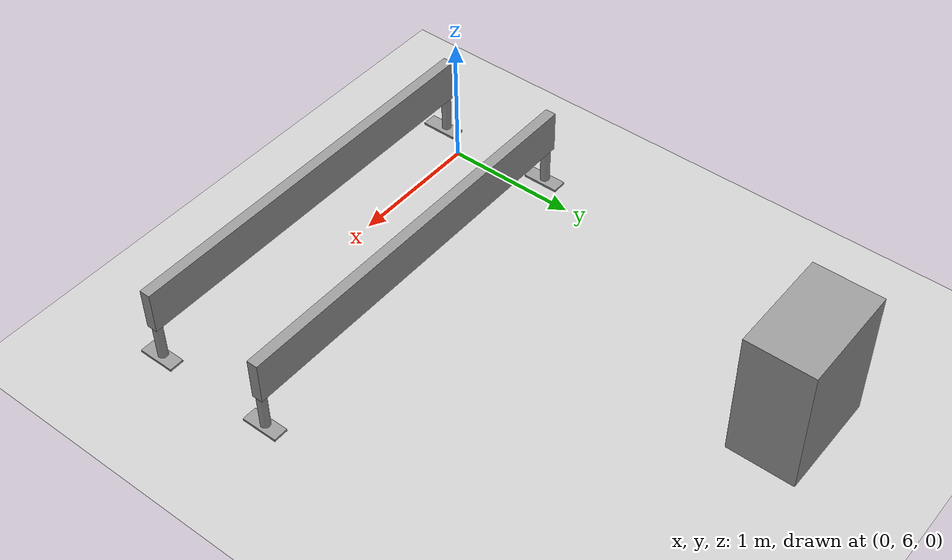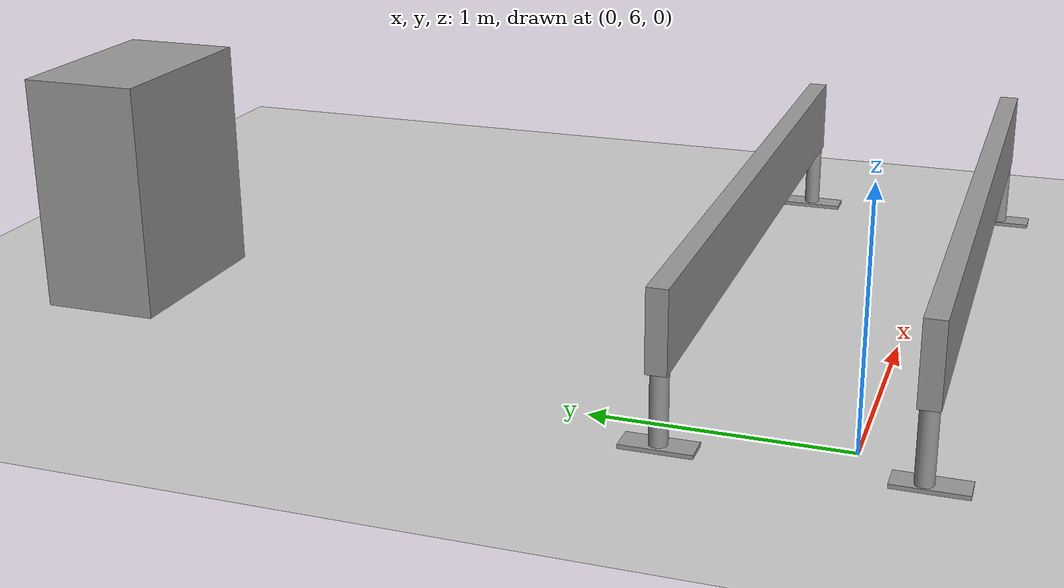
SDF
<sdf version="1.6">
 <world name="default">
  <model name="ground_plane">
   <static>1</static>
   <link name="link">
    <collision name="collision">
     <geometry><plane><normal>0 0 1</normal><size>100 100</size></plane></geometry>
     <surface><friction><ode><mu>100</mu><mu2>50</mu2></ode></friction></surface>
    </collision>
    <visual name="visual">
     <cast_shadows>0</cast_shadows>
     <geometry><plane><normal>0 0 1</normal><size>100 100</size></plane></geometry>
     <material>
      <script><uri>file://media/materials/scripts/gazebo.material</uri><name>Gazebo/Grey</name></script>
     </material>
    </visual>
   </link>
  </model>
  <model name="banchi">
   <link name="link_3">
    <pose>0.19401 0.058881 0.005926 0 -0 0</pose>
    <inertial>
     <mass>1</mass>
     <inertia>
      <ixx>0.166667</ixx>
      <ixy>0</ixy>
      <ixz>0</ixz>
      <iyy>0.166667</iyy>
      <iyz>0</iyz>
      <izz>0.166667</izz>
     </inertia>
    </inertial>
    <visual name="visual">
     <geometry><box><size>0.8 0.5 1</size></box></geometry>
     <material>
      <lighting>1</lighting>
      <script><uri>file://media/materials/scripts/gazebo.material</uri><name>Gazebo/Grey</name></script>
      <ambient>0.3 0.3 0.3 1</ambient>
      <diffuse>0.7 0.7 0.7 1</diffuse>
      <specular>0.01 0.01 0.01 1</specular>
      <emissive>0 0 0 1</emissive>
      <shader type="vertex"><normal_map>__default__</normal_map></shader>
     </material>
    </visual>
    <collision name="collision">
     <geometry><box><size>0.8 0.5 1</size></box></geometry>
     <surface>
      <friction>
       <ode><mu>1</mu><mu2>1</mu2><fdir1>0 0 0</fdir1><slip1>0</slip1><slip2>0</slip2></ode>
       <torsional>
        <coefficient>1</coefficient>
        <patch_radius>0</patch_radius>
        <surface_radius>0</surface_radius>
        <use_patch_radius>1</use_patch_radius>
        <ode><slip>0</slip></ode>
       </torsional>
      </friction>
      <bounce><restitution_coefficient>0</restitution_coefficient><threshold>1e+06</threshold></bounce>
      <contact>
       <collide_without_contact>0</collide_without_contact>
       <collide_without_contact_bitmask>1</collide_without_contact_bitmask>
       <collide_bitmask>1</collide_bitmask>
       <ode>
        <soft_cfm>0</soft_cfm>
        <soft_erp>0.2</soft_erp>
        <kp>1e+13</kp>
        <kd>1</kd>
        <max_vel>0.01</max_vel>
        <min_depth>0</min_depth>
       </ode>
       <bullet>
        <split_impulse>1</split_impulse>
        <split_impulse_penetration_threshold>-0.01</split_impulse_penetration_threshold>
        <soft_cfm>0</soft_cfm>
        <soft_erp>0.2</soft_erp>
        <kp>1e+13</kp>
        <kd>1</kd>
       </bullet>
      </contact>
     </surface>
    </collision>
   </link>
   <link name="link_0">
    <inertial>
     <mass>0.000785881</mass>
     <inertia>
      <ixx>5.11476e-06</ixx>
      <ixy>0</ixy>
      <ixz>0</ixz>
      <iyy>8.37345e-07</iyy>
      <iyz>0</iyz>
      <izz>5.8658e-06</izz>
     </inertia>
    </inertial>
    <pose>2.2428 -2.55708 -0.495327 0 -0 0</pose>
    <visual name="visual">
     <geometry><box><size>0.110122 0.278282 0.025669</size></box></geometry>
     <material>
      <lighting>1</lighting>
      <script><uri>file://media/materials/scripts/gazebo.material</uri><name>Gazebo/Grey</name></script>
     </material>
    </visual>
    <collision name="collision">
     <geometry><box><size>0.110122 0.278282 0.025669</size></box></geometry>
     <surface>
      <friction>
       <ode><mu>1</mu><mu2>1</mu2><fdir1>0 0 0</fdir1><slip1>0</slip1><slip2>0</slip2></ode>
       <torsional>
        <coefficient>1</coefficient>
        <patch_radius>0</patch_radius>
        <surface_radius>0</surface_radius>
        <use_patch_radius>1</use_patch_radius>
        <ode><slip>0</slip></ode>
       </torsional>
      </friction>
      <bounce><restitution_coefficient>0</restitution_coefficient><threshold>1e+06</threshold></bounce>
      <contact>
       <collide_without_contact>0</collide_without_contact>
       <collide_without_contact_bitmask>1</collide_without_contact_bitmask>
       <collide_bitmask>1</collide_bitmask>
       <ode>
        <soft_cfm>0</soft_cfm>
        <soft_erp>0.2</soft_erp>
        <kp>1e+13</kp>
        <kd>1</kd>
        <max_vel>0.01</max_vel>
        <min_depth>0</min_depth>
       </ode>
       <bullet>
        <split_impulse>1</split_impulse>
        <split_impulse_penetration_threshold>-0.01</split_impulse_penetration_threshold>
        <soft_cfm>0</soft_cfm>
        <soft_erp>0.2</soft_erp>
        <kp>1e+13</kp>
        <kd>1</kd>
       </bullet>
      </contact>
     </surface>
    </collision>
   </link>
   <link name="link_0_clone">
    <inertial>
     <mass>0.000785881</mass>
     <inertia>
      <ixx>5.11476e-06</ixx>
      <ixy>0</ixy>
      <ixz>0</ixz>
      <iyy>8.37345e-07</iyy>
      <iyz>0</iyz>
      <izz>5.8658e-06</izz>
     </inertia>
    </inertial>
    <pose>2.245 -3.48891 -0.495327 0 -0 0</pose>
    <visual name="visual">
     <geometry><box><size>0.110122 0.278282 0.025669</size></box></geometry>
     <material>
      <lighting>1</lighting>
      <script><uri>file://media/materials/scripts/gazebo.material</uri><name>Gazebo/Grey</name></script>
      <shader type="pixel"/>
     </material>
    </visual>
    <collision name="collision">
     <geometry><box><size>0.110122 0.278282 0.025669</size></box></geometry>
     <surface>
      <friction>
       <ode><mu>1</mu><mu2>1</mu2><fdir1>0 0 0</fdir1><slip1>0</slip1><slip2>0</slip2></ode>
       <torsional>
        <coefficient>1</coefficient>
        <patch_radius>0</patch_radius>
        <surface_radius>0</surface_radius>
        <use_patch_radius>1</use_patch_radius>
        <ode><slip>0</slip></ode>
       </torsional>
      </friction>
      <bounce><restitution_coefficient>0</restitution_coefficient><threshold>1e+06</threshold></bounce>
      <contact>
       <collide_without_contact>0</collide_without_contact>
       <collide_without_contact_bitmask>1</collide_without_contact_bitmask>
       <collide_bitmask>1</collide_bitmask>
       <ode>
        <soft_cfm>0</soft_cfm>
        <soft_erp>0.2</soft_erp>
        <kp>1e+13</kp>
        <kd>1</kd>
        <max_vel>0.01</max_vel>
        <min_depth>0</min_depth>
       </ode>
       <bullet>
        <split_impulse>1</split_impulse>
        <split_impulse_penetration_threshold>-0.01</split_impulse_penetration_threshold>
        <soft_cfm>0</soft_cfm>
        <soft_erp>0.2</soft_erp>
        <kp>1e+13</kp>
        <kd>1</kd>
       </bullet>
      </contact>
     </surface>
    </collision>
   </link>
   <link name="link_0_clone_11_clone">
    <inertial>
     <mass>0.000785881</mass>
     <inertia>
      <ixx>5.11476e-06</ixx>
      <ixy>0</ixy>
      <ixz>0</ixz>
      <iyy>8.37345e-07</iyy>
      <iyz>0</iyz>
      <izz>5.8658e-06</izz>
     </inertia>
    </inertial>
    <pose>-0.669518 -3.50617 -0.495327 0 -0 0</pose>
    <visual name="visual">
     <geometry><box><size>0.110122 0.278282 0.025669</size></box></geometry>
     <material>
      <lighting>1</lighting>
      <script><uri>file://media/materials/scripts/gazebo.material</uri><name>Gazebo/Grey</name></script>
      <shader type="pixel"/>
     </material>
    </visual>
    <collision name="collision">
     <geometry><box><size>0.110122 0.278282 0.025669</size></box></geometry>
     <surface>
      <friction>
       <ode><mu>1</mu><mu2>1</mu2><fdir1>0 0 0</fdir1><slip1>0</slip1><slip2>0</slip2></ode>
       <torsional>
        <coefficient>1</coefficient>
        <patch_radius>0</patch_radius>
        <surface_radius>0</surface_radius>
        <use_patch_radius>1</use_patch_radius>
        <ode><slip>0</slip></ode>
       </torsional>
      </friction>
      <bounce><restitution_coefficient>0</restitution_coefficient><threshold>1e+06</threshold></bounce>
      <contact>
       <collide_without_contact>0</collide_without_contact>
       <collide_without_contact_bitmask>1</collide_without_contact_bitmask>
       <collide_bitmask>1</collide_bitmask>
       <ode>
        <soft_cfm>0</soft_cfm>
        <soft_erp>0.2</soft_erp>
        <kp>1e+13</kp>
        <kd>1</kd>
        <max_vel>0.01</max_vel>
        <min_depth>0</min_depth>
       </ode>
       <bullet>
        <split_impulse>1</split_impulse>
        <split_impulse_penetration_threshold>-0.01</split_impulse_penetration_threshold>
        <soft_cfm>0</soft_cfm>
        <soft_erp>0.2</soft_erp>
        <kp>1e+13</kp>
        <kd>1</kd>
       </bullet>
      </contact>
     </surface>
    </collision>
   </link>
   <link name="link_0_clone_13">
    <inertial>
     <mass>0.000785881</mass>
     <inertia>
      <ixx>5.11476e-06</ixx>
      <ixy>0</ixy>
      <ixz>0</ixz>
      <iyy>8.37345e-07</iyy>
      <iyz>0</iyz>
      <izz>5.8658e-06</izz>
     </inertia>
    </inertial>
    <pose>-0.6754 -2.55339 -0.495327 0 -0 0</pose>
    <visual name="visual">
     <geometry><box><size>0.110122 0.278282 0.025669</size></box></geometry>
     <material>
      <lighting>1</lighting>
      <script><uri>file://media/materials/scripts/gazebo.material</uri><name>Gazebo/Grey</name></script>
      <shader type="pixel"/>
     </material>
    </visual>
    <collision name="collision">
     <geometry><box><size>0.110122 0.278282 0.025669</size></box></geometry>
     <surface>
      <friction>
       <ode><mu>1</mu><mu2>1</mu2><fdir1>0 0 0</fdir1><slip1>0</slip1><slip2>0</slip2></ode>
       <torsional>
        <coefficient>1</coefficient>
        <patch_radius>0</patch_radius>
        <surface_radius>0</surface_radius>
        <use_patch_radius>1</use_patch_radius>
        <ode><slip>0</slip></ode>
       </torsional>
      </friction>
      <bounce><restitution_coefficient>0</restitution_coefficient><threshold>1e+06</threshold></bounce>
      <contact>
       <collide_without_contact>0</collide_without_contact>
       <collide_without_contact_bitmask>1</collide_without_contact_bitmask>
       <collide_bitmask>1</collide_bitmask>
       <ode>
        <soft_cfm>0</soft_cfm>
        <soft_erp>0.2</soft_erp>
        <kp>1e+13</kp>
        <kd>1</kd>
        <max_vel>0.01</max_vel>
        <min_depth>0</min_depth>
       </ode>
       <bullet>
        <split_impulse>1</split_impulse>
        <split_impulse_penetration_threshold>-0.01</split_impulse_penetration_threshold>
        <soft_cfm>0</soft_cfm>
        <soft_erp>0.2</soft_erp>
        <kp>1e+13</kp>
        <kd>1</kd>
       </bullet>
      </contact>
     </surface>
    </collision>
   </link>
   <link name="link_6">
    <pose>0.776383 -2.54991 -0.039599 0 -0 0</pose>
    <inertial>
     <mass>0.0822689</mass>
     <inertia>
      <ixx>0.00690216</ixx>
      <ixy>0</ixy>
      <ixz>0</ixz>
      <iyy>0.0137115</iyy>
      <iyz>0</iyz>
      <izz>0.00690216</izz>
     </inertia>
    </inertial>
    <visual name="visual">
     <geometry><box><size>3 0.082269 0.32559</size></box></geometry>
     <material>
      <lighting>1</lighting>
      <script><uri>file://media/materials/scripts/gazebo.material</uri><name>Gazebo/Grey</name></script>
      <ambient>0.3 0.3 0.3 1</ambient>
      <diffuse>0.7 0.7 0.7 1</diffuse>
      <specular>0.01 0.01 0.01 1</specular>
      <emissive>0 0 0 1</emissive>
      <shader type="vertex"><normal_map>__default__</normal_map></shader>
     </material>
    </visual>
    <collision name="collision">
     <geometry><box><size>3 0.082269 0.32559</size></box></geometry>
     <surface>
      <friction>
       <ode><mu>1</mu><mu2>1</mu2><fdir1>0 0 0</fdir1><slip1>0</slip1><slip2>0</slip2></ode>
       <torsional>
        <coefficient>1</coefficient>
        <patch_radius>0</patch_radius>
        <surface_radius>0</surface_radius>
        <use_patch_radius>1</use_patch_radius>
        <ode><slip>0</slip></ode>
       </torsional>
      </friction>
      <bounce><restitution_coefficient>0</restitution_coefficient><threshold>1e+06</threshold></bounce>
      <contact>
       <collide_without_contact>0</collide_without_contact>
       <collide_without_contact_bitmask>1</collide_without_contact_bitmask>
       <collide_bitmask>1</collide_bitmask>
       <ode>
        <soft_cfm>0</soft_cfm>
        <soft_erp>0.2</soft_erp>
        <kp>1e+13</kp>
        <kd>1</kd>
        <max_vel>0.01</max_vel>
        <min_depth>0</min_depth>
       </ode>
       <bullet>
        <split_impulse>1</split_impulse>
        <split_impulse_penetration_threshold>-0.01</split_impulse_penetration_threshold>
        <soft_cfm>0</soft_cfm>
        <soft_erp>0.2</soft_erp>
        <kp>1e+13</kp>
        <kd>1</kd>
       </bullet>
      </contact>
     </surface>
    </collision>
   </link>
   <link name="link_6_clone">
    <pose>0.778937 -3.48396 -0.033205 0 -0 0</pose>
    <inertial>
     <mass>0.0822689</mass>
     <inertia>
      <ixx>0.00690216</ixx>
      <ixy>0</ixy>
      <ixz>0</ixz>
      <iyy>0.0137115</iyy>
      <iyz>0</iyz>
      <izz>0.00690216</izz>
     </inertia>
    </inertial>
    <visual name="visual">
     <geometry><box><size>3 0.082269 0.32559</size></box></geometry>
     <material>
      <lighting>1</lighting>
      <script><uri>file://media/materials/scripts/gazebo.material</uri><name>Gazebo/Grey</name></script>
      <ambient>0.3 0.3 0.3 1</ambient>
      <diffuse>0.7 0.7 0.7 1</diffuse>
      <specular>0.01 0.01 0.01 1</specular>
      <emissive>0 0 0 1</emissive>
      <shader type="vertex"><normal_map>__default__</normal_map></shader>
     </material>
    </visual>
    <collision name="collision">
     <geometry><box><size>3 0.082269 0.32559</size></box></geometry>
     <surface>
      <friction>
       <ode><mu>1</mu><mu2>1</mu2><fdir1>0 0 0</fdir1><slip1>0</slip1><slip2>0</slip2></ode>
       <torsional>
        <coefficient>1</coefficient>
        <patch_radius>0</patch_radius>
        <surface_radius>0</surface_radius>
        <use_patch_radius>1</use_patch_radius>
        <ode><slip>0</slip></ode>
       </torsional>
      </friction>
      <bounce><restitution_coefficient>0</restitution_coefficient><threshold>1e+06</threshold></bounce>
      <contact>
       <collide_without_contact>0</collide_without_contact>
       <collide_without_contact_bitmask>1</collide_without_contact_bitmask>
       <collide_bitmask>1</collide_bitmask>
       <ode>
        <soft_cfm>0</soft_cfm>
        <soft_erp>0.2</soft_erp>
        <kp>1e+13</kp>
        <kd>1</kd>
        <max_vel>0.01</max_vel>
        <min_depth>0</min_depth>
       </ode>
       <bullet>
        <split_impulse>1</split_impulse>
        <split_impulse_penetration_threshold>-0.01</split_impulse_penetration_threshold>
        <soft_cfm>0</soft_cfm>
        <soft_erp>0.2</soft_erp>
        <kp>1e+13</kp>
        <kd>1</kd>
       </bullet>
      </contact>
     </surface>
    </collision>
   </link>
   <link name="link_7_clone_2_clone_17">
    <pose>2.2351 -3.48736 -0.341634 0 -0 0</pose>
    <inertial>
     <mass>0.00501927</mass>
     <inertia>
      <ixx>0.000419846</ixx>
      <ixy>0</ixy>
      <ixz>0</ixz>
      <iyy>0.000419846</iyy>
      <iyz>0</iyz>
      <izz>3.14914e-06</izz>
     </inertia>
    </inertial>
    <visual name="visual">
     <geometry><cylinder><radius>0.0354247</radius><length>0.3</length></cylinder></geometry>
     <material>
      <lighting>1</lighting>
      <script><uri>file://media/materials/scripts/gazebo.material</uri><name>Gazebo/Grey</name></script>
      <ambient>0.3 0.3 0.3 1</ambient>
      <diffuse>0.7 0.7 0.7 1</diffuse>
      <specular>0.01 0.01 0.01 1</specular>
      <emissive>0 0 0 1</emissive>
      <shader type="vertex"><normal_map>__default__</normal_map></shader>
     </material>
    </visual>
    <collision name="collision">
     <geometry><cylinder><radius>0.035425</radius><length>0.3</length></cylinder></geometry>
     <surface>
      <friction>
       <ode><mu>1</mu><mu2>1</mu2><fdir1>0 0 0</fdir1><slip1>0</slip1><slip2>0</slip2></ode>
       <torsional>
        <coefficient>1</coefficient>
        <patch_radius>0</patch_radius>
        <surface_radius>0</surface_radius>
        <use_patch_radius>1</use_patch_radius>
        <ode><slip>0</slip></ode>
       </torsional>
      </friction>
      <bounce><restitution_coefficient>0</restitution_coefficient><threshold>1e+06</threshold></bounce>
      <contact>
       <collide_without_contact>0</collide_without_contact>
       <collide_without_contact_bitmask>1</collide_without_contact_bitmask>
       <collide_bitmask>1</collide_bitmask>
       <ode>
        <soft_cfm>0</soft_cfm>
        <soft_erp>0.2</soft_erp>
        <kp>1e+13</kp>
        <kd>1</kd>
        <max_vel>0.01</max_vel>
        <min_depth>0</min_depth>
       </ode>
       <bullet>
        <split_impulse>1</split_impulse>
        <split_impulse_penetration_threshold>-0.01</split_impulse_penetration_threshold>
        <soft_cfm>0</soft_cfm>
        <soft_erp>0.2</soft_erp>
        <kp>1e+13</kp>
        <kd>1</kd>
       </bullet>
      </contact>
     </surface>
    </collision>
   </link>
   <link name="link_7_clone_2_clone_18">
    <pose>2.24016 -2.55269 -0.347883 0 -0 0</pose>
    <inertial>
     <mass>0.00501927</mass>
     <inertia>
      <ixx>0.000419846</ixx>
      <ixy>0</ixy>
      <ixz>0</ixz>
      <iyy>0.000419846</iyy>
      <iyz>0</iyz>
      <izz>3.14914e-06</izz>
     </inertia>
    </inertial>
    <visual name="visual">
     <geometry><cylinder><radius>0.0354247</radius><length>0.3</length></cylinder></geometry>
     <material>
      <lighting>1</lighting>
      <script><uri>file://media/materials/scripts/gazebo.material</uri><name>Gazebo/Grey</name></script>
      <ambient>0.3 0.3 0.3 1</ambient>
      <diffuse>0.7 0.7 0.7 1</diffuse>
      <specular>0.01 0.01 0.01 1</specular>
      <emissive>0 0 0 1</emissive>
      <shader type="vertex"><normal_map>__default__</normal_map></shader>
     </material>
    </visual>
    <collision name="collision">
     <geometry><cylinder><radius>0.035425</radius><length>0.3</length></cylinder></geometry>
     <surface>
      <friction>
       <ode><mu>1</mu><mu2>1</mu2><fdir1>0 0 0</fdir1><slip1>0</slip1><slip2>0</slip2></ode>
       <torsional>
        <coefficient>1</coefficient>
        <patch_radius>0</patch_radius>
        <surface_radius>0</surface_radius>
        <use_patch_radius>1</use_patch_radius>
        <ode><slip>0</slip></ode>
       </torsional>
      </friction>
      <bounce><restitution_coefficient>0</restitution_coefficient><threshold>1e+06</threshold></bounce>
      <contact>
       <collide_without_contact>0</collide_without_contact>
       <collide_without_contact_bitmask>1</collide_without_contact_bitmask>
       <collide_bitmask>1</collide_bitmask>
       <ode>
        <soft_cfm>0</soft_cfm>
        <soft_erp>0.2</soft_erp>
        <kp>1e+13</kp>
        <kd>1</kd>
        <max_vel>0.01</max_vel>
        <min_depth>0</min_depth>
       </ode>
       <bullet>
        <split_impulse>1</split_impulse>
        <split_impulse_penetration_threshold>-0.01</split_impulse_penetration_threshold>
        <soft_cfm>0</soft_cfm>
        <soft_erp>0.2</soft_erp>
        <kp>1e+13</kp>
        <kd>1</kd>
       </bullet>
      </contact>
     </surface>
    </collision>
   </link>
   <link name="link_7_clone_2_clone_3">
    <pose>-0.681153 -2.5531 -0.33953 0 -0 0</pose>
    <inertial>
     <mass>0.00501927</mass>
     <inertia>
      <ixx>0.000419846</ixx>
      <ixy>0</ixy>
      <ixz>0</ixz>
      <iyy>0.000419846</iyy>
      <iyz>0</iyz>
      <izz>3.14914e-06</izz>
     </inertia>
    </inertial>
    <visual name="visual">
     <geometry><cylinder><radius>0.0354247</radius><length>0.3</length></cylinder></geometry>
     <material>
      <lighting>1</lighting>
      <script><uri>file://media/materials/scripts/gazebo.material</uri><name>Gazebo/Grey</name></script>
      <ambient>0.3 0.3 0.3 1</ambient>
      <diffuse>0.7 0.7 0.7 1</diffuse>
      <specular>0.01 0.01 0.01 1</specular>
      <emissive>0 0 0 1</emissive>
      <shader type="vertex"><normal_map>__default__</normal_map></shader>
     </material>
    </visual>
    <collision name="collision">
     <geometry><cylinder><radius>0.035425</radius><length>0.3</length></cylinder></geometry>
     <surface>
      <friction>
       <ode><mu>1</mu><mu2>1</mu2><fdir1>0 0 0</fdir1><slip1>0</slip1><slip2>0</slip2></ode>
       <torsional>
        <coefficient>1</coefficient>
        <patch_radius>0</patch_radius>
        <surface_radius>0</surface_radius>
        <use_patch_radius>1</use_patch_radius>
        <ode><slip>0</slip></ode>
       </torsional>
      </friction>
      <bounce><restitution_coefficient>0</restitution_coefficient><threshold>1e+06</threshold></bounce>
      <contact>
       <collide_without_contact>0</collide_without_contact>
       <collide_without_contact_bitmask>1</collide_without_contact_bitmask>
       <collide_bitmask>1</collide_bitmask>
       <ode>
        <soft_cfm>0</soft_cfm>
        <soft_erp>0.2</soft_erp>
        <kp>1e+13</kp>
        <kd>1</kd>
        <max_vel>0.01</max_vel>
        <min_depth>0</min_depth>
       </ode>
       <bullet>
        <split_impulse>1</split_impulse>
        <split_impulse_penetration_threshold>-0.01</split_impulse_penetration_threshold>
        <soft_cfm>0</soft_cfm>
        <soft_erp>0.2</soft_erp>
        <kp>1e+13</kp>
        <kd>1</kd>
       </bullet>
      </contact>
     </surface>
    </collision>
   </link>
   <link name="link_7_clone_2_clone_4">
    <pose>-0.683763 -3.4842 -0.342204 0 -0 0</pose>
    <inertial>
     <mass>0.00501927</mass>
     <inertia>
      <ixx>0.000419846</ixx>
      <ixy>0</ixy>
      <ixz>0</ixz>
      <iyy>0.000419846</iyy>
      <iyz>0</iyz>
      <izz>3.14914e-06</izz>
     </inertia>
    </inertial>
    <visual name="visual">
     <geometry><cylinder><radius>0.0354247</radius><length>0.3</length></cylinder></geometry>
     <material>
      <lighting>1</lighting>
      <script><uri>file://media/materials/scripts/gazebo.material</uri><name>Gazebo/Grey</name></script>
      <ambient>0.3 0.3 0.3 1</ambient>
      <diffuse>0.7 0.7 0.7 1</diffuse>
      <specular>0.01 0.01 0.01 1</specular>
      <emissive>0 0 0 1</emissive>
      <shader type="vertex"><normal_map>__default__</normal_map></shader>
     </material>
    </visual>
    <collision name="collision">
     <geometry><cylinder><radius>0.035425</radius><length>0.3</length></cylinder></geometry>
     <surface>
      <friction>
       <ode><mu>1</mu><mu2>1</mu2><fdir1>0 0 0</fdir1><slip1>0</slip1><slip2>0</slip2></ode>
       <torsional>
        <coefficient>1</coefficient>
        <patch_radius>0</patch_radius>
        <surface_radius>0</surface_radius>
        <use_patch_radius>1</use_patch_radius>
        <ode><slip>0</slip></ode>
       </torsional>
      </friction>
      <bounce><restitution_coefficient>0</restitution_coefficient><threshold>1e+06</threshold></bounce>
      <contact>
       <collide_without_contact>0</collide_without_contact>
       <collide_without_contact_bitmask>1</collide_without_contact_bitmask>
       <collide_bitmask>1</collide_bitmask>
       <ode>
        <soft_cfm>0</soft_cfm>
        <soft_erp>0.2</soft_erp>
        <kp>1e+13</kp>
        <kd>1</kd>
        <max_vel>0.01</max_vel>
        <min_depth>0</min_depth>
       </ode>
       <bullet>
        <split_impulse>1</split_impulse>
        <split_impulse_penetration_threshold>-0.01</split_impulse_penetration_threshold>
        <soft_cfm>0</soft_cfm>
        <soft_erp>0.2</soft_erp>
        <kp>1e+13</kp>
        <kd>1</kd>
       </bullet>
      </contact>
     </surface>
    </collision>
   </link>
   <static>1</static>
   <pose>0.510915 9.2351 0.494074 0 -0 0</pose>
  </model>
 </world>
</sdf>
